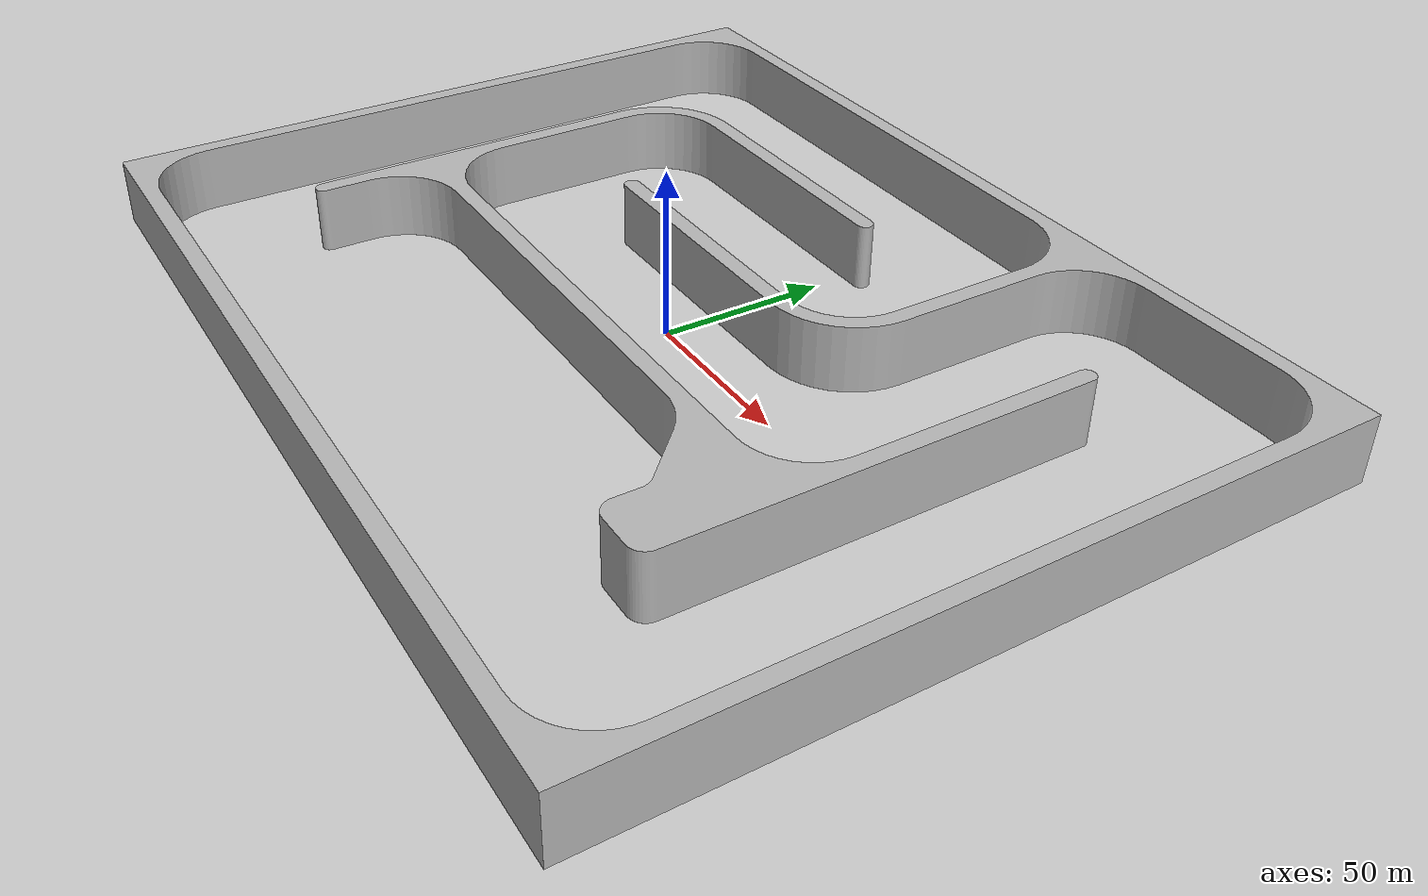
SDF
<?xml version='1.0'?>

<sdf version='1.4'>

  <model name="porto_track">

    <link name="link">

      <collision name="collision">
        <geometry>
          <mesh>
            <uri>/sim_ws/src/world/models/race_track/race_track.stl</uri>
          </mesh>
        </geometry>
      </collision>

      <visual name="visual">
        <geometry>
          <mesh>
            <uri>/sim_ws/src/world/models/race_track/race_track.stl</uri>
          </mesh>
        </geometry>
      </visual>

    </link>

    <static>1</static>

  </model>

</sdf>
